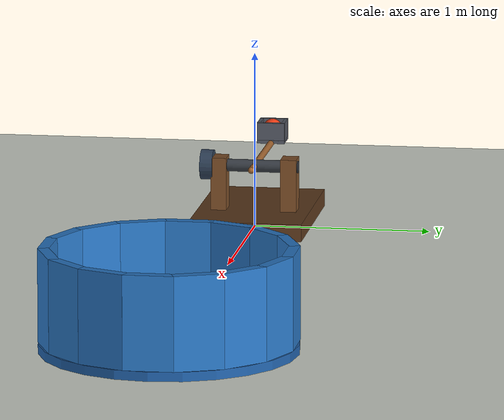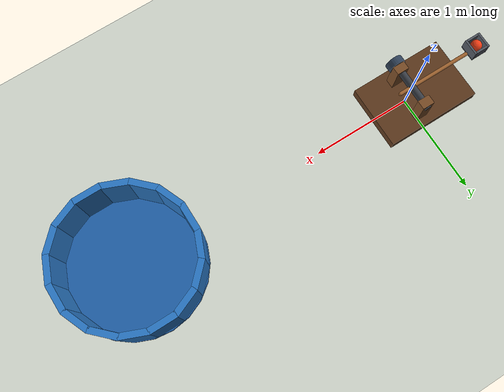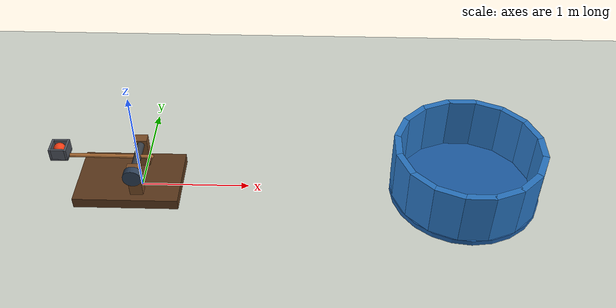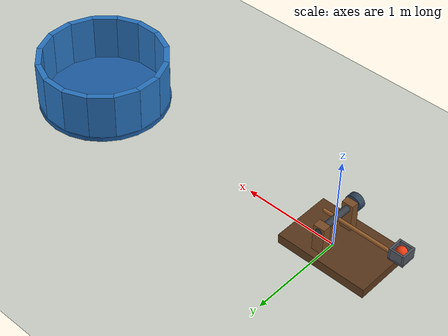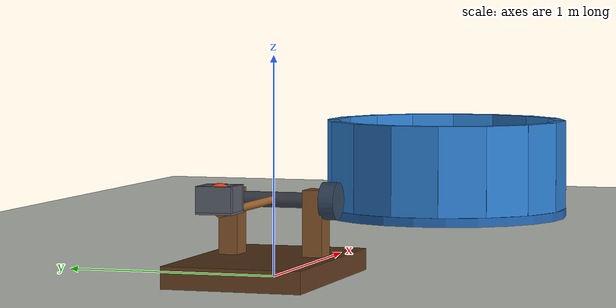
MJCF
<mujoco model="spring_catapult_into_bucket">
  <compiler angle="degree" autolimits="true"/>
  <option timestep="0.002" gravity="0 0 -9.81" integrator="implicitfast" solver="Newton" iterations="80"/>
  <size njmax="1000" nconmax="200"/>

  <visual>
    <headlight ambient="0.4 0.4 0.4" diffuse="0.8 0.8 0.8" specular="0.2 0.2 0.2"/>
    <map znear="0.01" zfar="30"/>
  </visual>

  <worldbody>
    <light name="overhead" pos="1 0 5" dir="0 0 -1"/>
    <camera name="overview" pos="1.3 -6 3.2" xyaxes="1 0 0 0 0.43 0.90"/>

    <geom name="floor" type="plane" pos="0 0 0" size="8 5 0.1" rgba="0.82 0.84 0.80 1" friction="0.8 0.01 0.001"/>

    <!-- A preloaded torsion spring raises the arm to its mechanical stop.
         The open cup releases the ball when the arm stops. -->
    <body name="catapult" pos="0 0 0.35">
      <geom name="catapult_base" type="box" pos="-0.1 0 -0.30" size="0.48 0.32 0.05" rgba="0.36 0.22 0.11 1"/>
      <geom name="catapult_support_left" type="box" pos="0 0.20 -0.11" size="0.06 0.045 0.16" rgba="0.48 0.30 0.15 1"/>
      <geom name="catapult_support_right" type="box" pos="0 -0.20 -0.11" size="0.06 0.045 0.16" rgba="0.48 0.30 0.15 1"/>
      <geom name="catapult_axle" type="cylinder" pos="0 0 0" euler="90 0 0" size="0.035 0.25" rgba="0.22 0.24 0.27 1"/>
      <geom name="catapult_spring_housing" type="cylinder" pos="0 -0.27 0" euler="90 0 0" size="0.085 0.035" rgba="0.18 0.25 0.34 1"/>

      <body name="catapult_arm" pos="0 0 0">
        <inertial pos="-0.32 0 0" mass="0.25" diaginertia="0.0006 0.025 0.025"/>
        <joint name="catapult_hinge" type="hinge" axis="0 1 0" range="0 45" stiffness="6.5" springref="74.4845" damping="0.03" armature="0" solreflimit="0.004 1" solimplimit="0.99 0.999 0.001"/>

        <geom name="catapult_throwing_arm" type="capsule" fromto="-0.70 0 0 0.13 0 0" size="0.018" rgba="0.64 0.40 0.19 1"/>
        <geom name="catapult_cup_bottom" type="box" pos="-0.70 0 0.01" size="0.08 0.08 0.01" rgba="0.32 0.34 0.38 1" friction="0.08 0.002 0.001" solref="0.004 1"/>
        <geom name="catapult_cup_back" type="box" pos="-0.77 0 0.065" size="0.01 0.08 0.055" rgba="0.32 0.34 0.38 1" friction="0.08 0.002 0.001" solref="0.004 1"/>
        <geom name="catapult_cup_front" type="box" pos="-0.63 0 0.065" size="0.01 0.08 0.055" rgba="0.32 0.34 0.38 1" friction="0.08 0.002 0.001" solref="0.004 1"/>
        <geom name="catapult_cup_left" type="box" pos="-0.70 0.07 0.065" size="0.06 0.01 0.055" rgba="0.32 0.34 0.38 1" friction="0.08 0.002 0.001" solref="0.004 1"/>
        <geom name="catapult_cup_right" type="box" pos="-0.70 -0.07 0.065" size="0.06 0.01 0.055" rgba="0.32 0.34 0.38 1" friction="0.08 0.002 0.001" solref="0.004 1"/>
      </body>
    </body>

    <body name="ball" pos="-0.70 0 0.425">
      <freejoint name="ball_free"/>
      <geom name="ball" type="sphere" size="0.055" mass="0.12" rgba="0.95 0.24 0.08 1" friction="0.08 0.002 0.001" solref="0.004 1"/>
    </body>

    <!-- Bucket center is 3 m horizontally from the catapult axle.
         Primitive box segments form a closed, open-topped circular wall. -->
    <body name="bucket" pos="3 0 0.025">
      <geom name="bucket_bottom" type="cylinder" size="0.685 0.025" rgba="0.12 0.37 0.65 1" friction="0.9 0.01 0.001" solref="0.008 1"/>
      <geom name="bucket_wall_00" type="box" pos="0.640000 0 0.275" euler="0 0 0" size="0.03 0.133 0.25" rgba="0.16 0.46 0.76 1" friction="0.9 0.01 0.001" solref="0.008 1"/>
      <geom name="bucket_wall_01" type="box" pos="0.591283 0.244917 0.275" euler="0 0 22.5" size="0.03 0.133 0.25" rgba="0.16 0.46 0.76 1" friction="0.9 0.01 0.001" solref="0.008 1"/>
      <geom name="bucket_wall_02" type="box" pos="0.452548 0.452548 0.275" euler="0 0 45" size="0.03 0.133 0.25" rgba="0.16 0.46 0.76 1" friction="0.9 0.01 0.001" solref="0.008 1"/>
      <geom name="bucket_wall_03" type="box" pos="0.244917 0.591283 0.275" euler="0 0 67.5" size="0.03 0.133 0.25" rgba="0.16 0.46 0.76 1" friction="0.9 0.01 0.001" solref="0.008 1"/>
      <geom name="bucket_wall_04" type="box" pos="0 0.640000 0.275" euler="0 0 90" size="0.03 0.133 0.25" rgba="0.16 0.46 0.76 1" friction="0.9 0.01 0.001" solref="0.008 1"/>
      <geom name="bucket_wall_05" type="box" pos="-0.244917 0.591283 0.275" euler="0 0 112.5" size="0.03 0.133 0.25" rgba="0.16 0.46 0.76 1" friction="0.9 0.01 0.001" solref="0.008 1"/>
      <geom name="bucket_wall_06" type="box" pos="-0.452548 0.452548 0.275" euler="0 0 135" size="0.03 0.133 0.25" rgba="0.16 0.46 0.76 1" friction="0.9 0.01 0.001" solref="0.008 1"/>
      <geom name="bucket_wall_07" type="box" pos="-0.591283 0.244917 0.275" euler="0 0 157.5" size="0.03 0.133 0.25" rgba="0.16 0.46 0.76 1" friction="0.9 0.01 0.001" solref="0.008 1"/>
      <geom name="bucket_wall_08" type="box" pos="-0.640000 0 0.275" euler="0 0 180" size="0.03 0.133 0.25" rgba="0.16 0.46 0.76 1" friction="0.9 0.01 0.001" solref="0.008 1"/>
      <geom name="bucket_wall_09" type="box" pos="-0.591283 -0.244917 0.275" euler="0 0 202.5" size="0.03 0.133 0.25" rgba="0.16 0.46 0.76 1" friction="0.9 0.01 0.001" solref="0.008 1"/>
      <geom name="bucket_wall_10" type="box" pos="-0.452548 -0.452548 0.275" euler="0 0 225" size="0.03 0.133 0.25" rgba="0.16 0.46 0.76 1" friction="0.9 0.01 0.001" solref="0.008 1"/>
      <geom name="bucket_wall_11" type="box" pos="-0.244917 -0.591283 0.275" euler="0 0 247.5" size="0.03 0.133 0.25" rgba="0.16 0.46 0.76 1" friction="0.9 0.01 0.001" solref="0.008 1"/>
      <geom name="bucket_wall_12" type="box" pos="0 -0.640000 0.275" euler="0 0 270" size="0.03 0.133 0.25" rgba="0.16 0.46 0.76 1" friction="0.9 0.01 0.001" solref="0.008 1"/>
      <geom name="bucket_wall_13" type="box" pos="0.244917 -0.591283 0.275" euler="0 0 292.5" size="0.03 0.133 0.25" rgba="0.16 0.46 0.76 1" friction="0.9 0.01 0.001" solref="0.008 1"/>
      <geom name="bucket_wall_14" type="box" pos="0.452548 -0.452548 0.275" euler="0 0 315" size="0.03 0.133 0.25" rgba="0.16 0.46 0.76 1" friction="0.9 0.01 0.001" solref="0.008 1"/>
      <geom name="bucket_wall_15" type="box" pos="0.591283 -0.244917 0.275" euler="0 0 337.5" size="0.03 0.133 0.25" rgba="0.16 0.46 0.76 1" friction="0.9 0.01 0.001" solref="0.008 1"/>
    </body>
  </worldbody>

  <keyframe>
    <key name="start" time="0" qpos="0 -0.70 0 0.425 1 0 0 0" qvel="0 0 0 0 0 0 0"/>
  </keyframe>
</mujoco>
